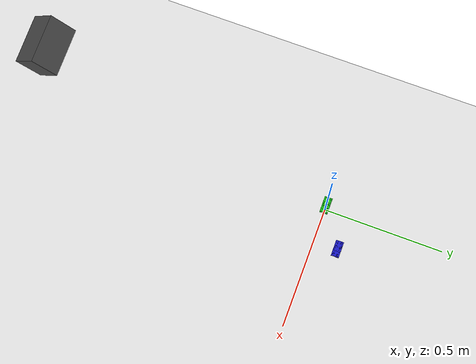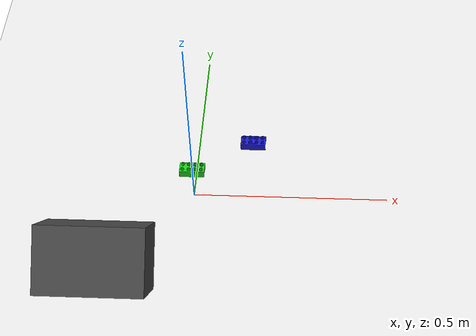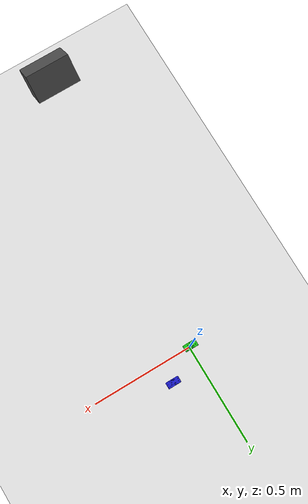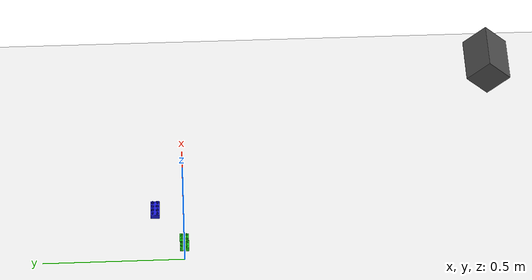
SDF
<sdf version="1.8">
 <world name="brick_world">
  <physics name="1ms" type="ignored">
   <max_step_size>0.001</max_step_size>
   <real_time_factor>1.0</real_time_factor>
  </physics>
  <plugin filename="ignition-gazebo-physics-system" name="ignition::gazebo::systems::Physics"/>
  <plugin filename="ignition-gazebo-sensors-system" name="ignition::gazebo::systems::Sensors">
   <render_engine>ogre2</render_engine>
  </plugin>
  <plugin filename="ignition-gazebo-scene-broadcaster-system" name="ignition::gazebo::systems::SceneBroadcaster"/>
  <plugin filename="ignition-gazebo-user-commands-system" name="ignition::gazebo::systems::UserCommands"/>
  <light type="directional" name="sun">
   <pose>0 0 5 0 0 0</pose>
   <direction>0 0 -1</direction>
   <diffuse>0.8 0.8 0.8 1</diffuse>
   <specular>0.2 0.2 0.2 1</specular>
  </light>
  <model name="ground_plane">
   <static>true</static>
   <link name="link">
    <collision name="collision"><geometry><plane><size>10 10</size></plane></geometry></collision>
    <visual name="visual">
     <geometry><plane><size>10 10</size></plane></geometry>
     <material><ambient>0.9 0.9 0.9 1</ambient><diffuse>0.9 0.9 0.9 1</diffuse></material>
    </visual>
   </link>
  </model>
  <include><uri>model://4x2_blue</uri><name>lego_blue_4x2</name><pose>0.15 0.1 0.1 0 0 0</pose></include>
  <include><uri>model://4x2_green</uri><name>lego_green_4x2</name><pose>0.0 0.0 0.1 0 0 0</pose></include>
  <include><uri>model://camera_model</uri><name>camera_rig</name><pose>0 -1 1 0.7854 0 0</pose></include>
 </world>
</sdf>

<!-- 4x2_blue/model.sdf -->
<sdf version="1.9">
  <model name="lego_4x2_blue">
    <link name="link">
      <inertial>
        <mass>0.010</mass>
        <inertia>
          <ixx>5.253e-6</ixx><iyy>1.5694e-5</iyy><izz>1.6441e-5</izz>
          <ixy>0</ixy><ixz>0</ixz><iyz>0</iyz>
        </inertia>
      </inertial>
      <collision name="collision">
        <geometry>
          <mesh><uri>model://meshes/4x2_base_simplified.obj</uri><scale>1 1 1</scale></mesh>
        </geometry>
      </collision>
      <visual name="visual">
        <geometry>
          <mesh><uri>model://meshes/4x2_base_simplified.obj</uri><scale>1 1 1</scale></mesh>
        </geometry>
        <material>
          <ambient>0.1 0.1 0.8 1</ambient>
          <diffuse>0.1 0.1 0.8 1</diffuse>
        </material>
      </visual>
    </link>
  </model>
</sdf>

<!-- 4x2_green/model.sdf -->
<sdf version="1.9">
  <model name="lego_4x2_green">
    <link name="link">
      <inertial>
        <mass>0.010</mass>
        <inertia>
          <ixx>5.253e-6</ixx><iyy>1.5694e-5</iyy><izz>1.6441e-5</izz>
          <ixy>0</ixy><ixz>0</ixz><iyz>0</iyz>
        </inertia>
      </inertial>
      <collision name="collision">
        <geometry>
          <mesh><uri>model://meshes/4x2_base_simplified.obj</uri><scale>1 1 1</scale></mesh>
        </geometry>
      </collision>
      <visual name="visual">
        <geometry>
          <mesh><uri>model://meshes/4x2_base_simplified.obj</uri><scale>1 1 1</scale></mesh>
        </geometry>
        <material>
          <ambient>0.1 0.8 0.1 1</ambient>
          <diffuse>0.1 0.8 0.1 1</diffuse>
        </material>
      </visual>
    </link>
  </model>
</sdf>

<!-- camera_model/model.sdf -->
<sdf version="1.9">
  <model name="camera_rig">
    <static>true</static>
    <link name="camera_link">
      <inertial>
        <mass>0.1</mass>
        <inertia>
          <ixx>1e-5</ixx><iyy>1e-5</iyy><izz>1e-5</izz>
          <ixy>0</ixy><ixz>0</ixz><iyz>0</iyz>
        </inertia>
      </inertial>

      <visual name="mount_box">
        <geometry>
          <box><size>0.16 0.10 0.10</size></box>
        </geometry>
        <material>
          <ambient>0.3 0.3 0.3 1</ambient>
          <diffuse>0.3 0.3 0.3 1</diffuse>
        </material>
      </visual>

      <visual name="lens">
        <pose>0 0 -0.05 0 0 0</pose>
        <geometry>
          <cylinder><radius>0.02</radius><length>0.02</length></cylinder>
        </geometry>
        <material>
          <ambient>0 0.5 1 1</ambient>
          <diffuse>0 0.5 1 1</diffuse>
        </material>
      </visual>

      <sensor name="rgbd_camera" type="rgbd_camera">
        <pose>0 0 -0.07 0 1.5708 1.5708</pose>
        <camera>
          <horizontal_fov>0.7854</horizontal_fov>
          <image>
            <width>640</width>
            <height>480</height>
          </image>
          <clip>
            <near>0.05</near>
            <far>10</far>
          </clip>
        </camera>
        <always_on>1</always_on>
        <update_rate>20</update_rate>
        <visualize>true</visualize>
        <topic>rgbd_camera</topic>
      </sensor>
    </link>
  </model>
</sdf>
